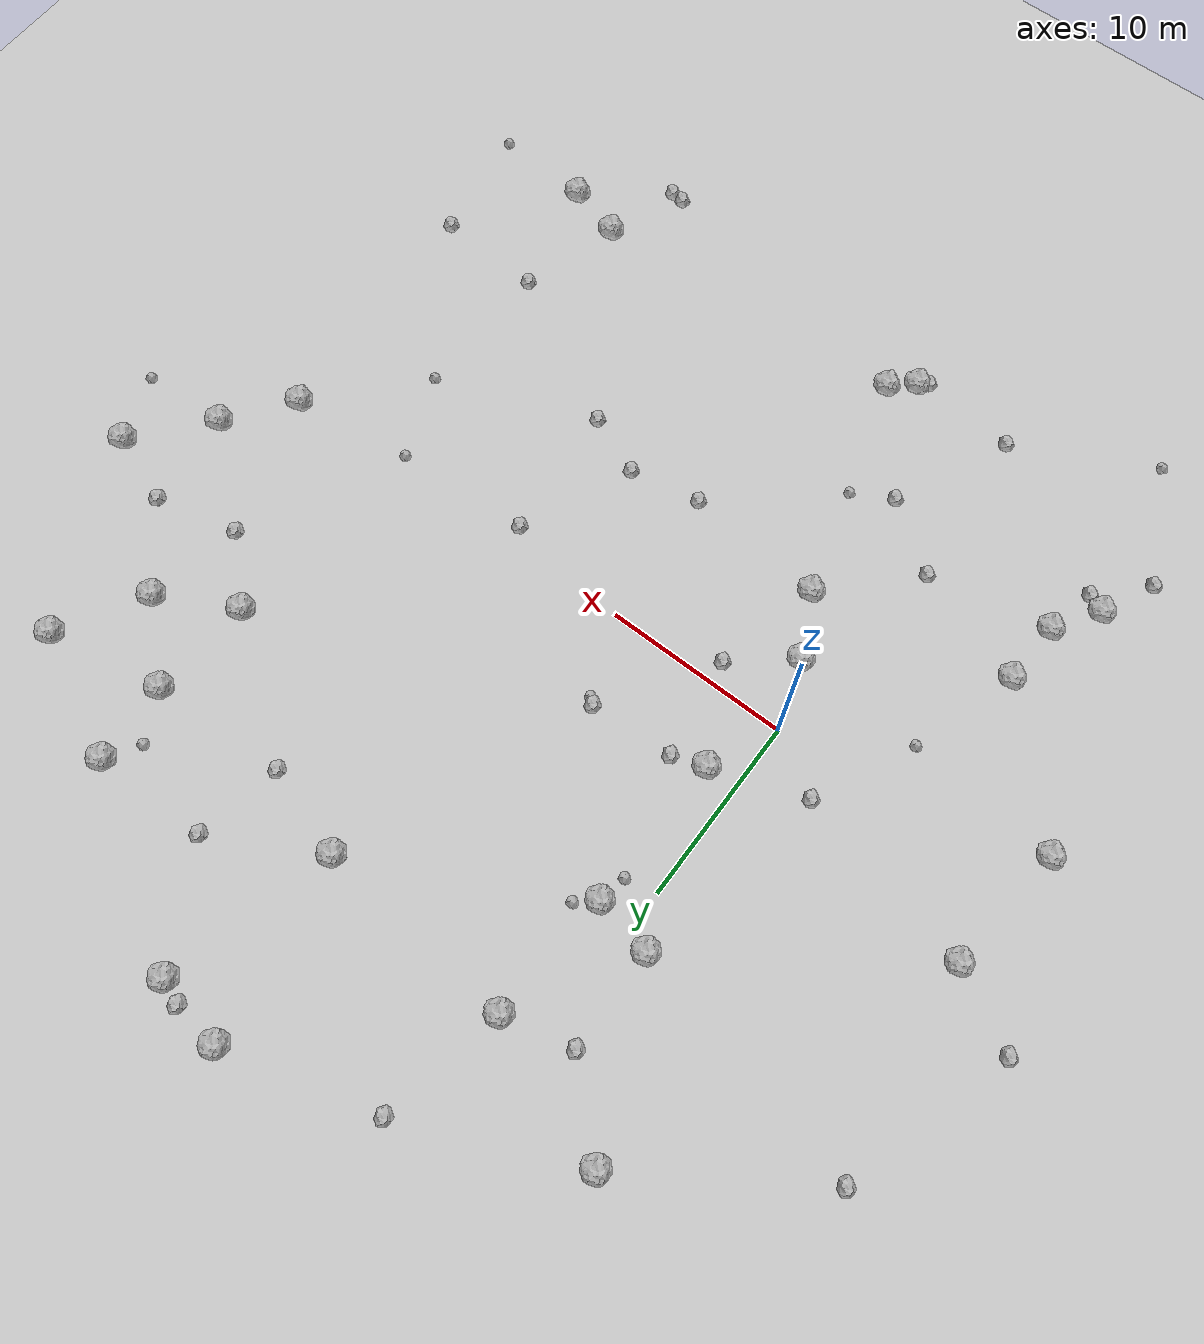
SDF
<sdf version="1.6">
 <world name="default">
  <include><uri>model://custom_ground</uri></include>
  <include><uri>model://sun</uri></include>
  <model name="rock1_0_0">
   <include><uri>model://rock1</uri><pose>-7.665097788831506 -9.14031644332022 0.5 0 0 0</pose></include>
  </model>
  <model name="rock1_0_1">
   <include><uri>model://rock1</uri><pose>1.749082950583304 3.670253869079552 0.5 0 0 0</pose></include>
  </model>
  <model name="rock1_0_2">
   <include><uri>model://rock1</uri><pose>27.285335235242513 -19.18047251315876 0.5 0 0 0</pose></include>
  </model>
  <model name="rock1_0_3">
   <include><uri>model://rock1</uri><pose>15.75125062573997 26.80326223767741 0.5 0 0 0</pose></include>
  </model>
  <model name="rock1_0_4">
   <include><uri>model://rock1</uri><pose>32.07330132265277 17.930565343451136 0.5 0 0 0</pose></include>
  </model>
  <model name="rock1_0_5">
   <include><uri>model://rock1</uri><pose>33.524904742795435 3.9685626496330997 0.5 0 0 0</pose></include>
  </model>
  <model name="rock1_0_6">
   <include><uri>model://rock1</uri><pose>29.413794461519743 13.387691711273924 0.5 0 0 0</pose></include>
  </model>
  <model name="rock1_0_7">
   <include><uri>model://rock1</uri><pose>11.885067412005938 27.55520479216201 0.5 0 0 0</pose></include>
  </model>
  <model name="rock1_0_8">
   <include><uri>model://rock1</uri><pose>-13.78052722447391 -2.6110933847036506 0.5 0 0 0</pose></include>
  </model>
  <model name="rock1_0_9">
   <include><uri>model://rock1</uri><pose>2.493760067396188 18.73852418809131 0.5 0 0 0</pose></include>
  </model>
  <model name="rock1_0_10">
   <include><uri>model://rock1</uri><pose>25.666368532358263 16.73550872525572 0.5 0 0 0</pose></include>
  </model>
  <model name="rock1_0_11">
   <include><uri>model://rock1</uri><pose>24.224269662808716 -18.302510047962393 0.5 0 0 0</pose></include>
  </model>
  <model name="rock1_0_12">
   <include><uri>model://rock1</uri><pose>-5.019593318715749 21.329093604675172 0.5 0 0 0</pose></include>
  </model>
  <model name="rock1_0_13">
   <include><uri>model://rock1</uri><pose>5.085116447933309 -20.34654263689962 0.5 0 0 0</pose></include>
  </model>
  <model name="rock1_0_14">
   <include><uri>model://rock1</uri><pose>1.9471901750164342 11.91224014068031 0.5 0 0 0</pose></include>
  </model>
  <model name="rock1_0_15">
   <include><uri>model://rock1</uri><pose>30.919128769261434 0.49162523178139494 0.5 0 0 0</pose></include>
  </model>
  <model name="rock1_0_16">
   <include><uri>model://rock1</uri><pose>25.385912588542872 21.061261592377242 0.5 0 0 0</pose></include>
  </model>
  <model name="rock1_0_17">
   <include><uri>model://rock1</uri><pose>-9.442079987540762 -14.880738652382053 0.5 0 0 0</pose></include>
  </model>
  <model name="rock1_0_18">
   <include><uri>model://rock1</uri><pose>36.85533938851372 7.8275449660594205 0.5 0 0 0</pose></include>
  </model>
  <model name="rock1_0_19">
   <include><uri>model://rock1</uri><pose>6.348032613185829 -19.26625221608378 0.5 0 0 0</pose></include>
  </model>
  <model name="rock1_0_20">
   <include><uri>model://rock1</uri><pose>-7.864524463861498 -12.53873812769357 0.5 0 0 0</pose></include>
  </model>
  <model name="rock1_0_21">
   <include><uri>model://rock1</uri><pose>25.27933930589922 11.224622398152306 0.5 0 0 0</pose></include>
  </model>
  <model name="rock1_0_22">
   <include><uri>model://rock1</uri><pose>13.387478105056204 17.848089938084414 0.5 0 0 0</pose></include>
  </model>
  <model name="rock1_0_23">
   <include><uri>model://rock1</uri><pose>1.2205791135359405 -3.6570912618335996 0.5 0 0 0</pose></include>
  </model>
  <model name="rock1_0_24">
   <include><uri>model://rock1</uri><pose>-1.179028126333911 12.505851895990396 0.5 0 0 0</pose></include>
  </model>
  <model name="rock1_0_25">
   <include><uri>model://rock1</uri><pose>-12.958369268569465 4.176922521098547 0.5 0 0 0</pose></include>
  </model>
  <model name="rock1_0_26">
   <include><uri>model://rock1</uri><pose>2.869627095277778 -6.978271631738778 0.5 0 0 0</pose></include>
  </model>
  <model name="rock2_0_0">
   <include><uri>model://rock2</uri><pose>3.4596056904368737 4.280809921026105 0.3 0 0 0</pose></include>
  </model>
  <model name="rock2_0_1">
   <include><uri>model://rock2</uri><pose>-0.6517869298892691 -20.13078063236705 0.3 0 0 0</pose></include>
  </model>
  <model name="rock2_0_2">
   <include><uri>model://rock2</uri><pose>4.229515482831843 -1.172539416506055 0.3 0 0 0</pose></include>
  </model>
  <model name="rock2_0_3">
   <include><uri>model://rock2</uri><pose>3.794735326104398 25.30416215305455 0.3 0 0 0</pose></include>
  </model>
  <model name="rock2_0_4">
   <include><uri>model://rock2</uri><pose>28.428438567673226 8.233228893540698 0.3 0 0 0</pose></include>
  </model>
  <model name="rock2_0_5">
   <include><uri>model://rock2</uri><pose>10.375432184818777 -7.60723954187355 0.3 0 0 0</pose></include>
  </model>
  <model name="rock2_0_6">
   <include><uri>model://rock2</uri><pose>-17.00614192292381 6.372796739049868 0.3 0 0 0</pose></include>
  </model>
  <model name="rock2_0_7">
   <include><uri>model://rock2</uri><pose>25.768662312333554 -12.79082683371626 0.3 0 0 0</pose></include>
  </model>
  <model name="rock2_0_8">
   <include><uri>model://rock2</uri><pose>32.94953089482068 9.291203279228213 0.3 0 0 0</pose></include>
  </model>
  <model name="rock2_0_9">
   <include><uri>model://rock2</uri><pose>18.211138209968503 16.357638656225944 0.3 0 0 0</pose></include>
  </model>
  <model name="rock2_0_10">
   <include><uri>model://rock2</uri><pose>22.188953299586544 -22.354559475552733 0.3 0 0 0</pose></include>
  </model>
  <model name="rock2_0_11">
   <include><uri>model://rock2</uri><pose>22.91453507927251 -22.44850692792692 0.3 0 0 0</pose></include>
  </model>
  <model name="rock2_0_12">
   <include><uri>model://rock2</uri><pose>4.553988188334941 -20.750430294265865 0.3 0 0 0</pose></include>
  </model>
  <model name="rock2_0_13">
   <include><uri>model://rock2</uri><pose>-8.54578334672624 -15.349663889802734 0.3 0 0 0</pose></include>
  </model>
  <model name="rock2_0_14">
   <include><uri>model://rock2</uri><pose>14.228346526496502 -6.910479446993385 0.3 0 0 0</pose></include>
  </model>
  <model name="rock2_0_15">
   <include><uri>model://rock2</uri><pose>-1.3638564184170718 -11.289715266932625 0.3 0 0 0</pose></include>
  </model>
  <model name="rock2_0_16">
   <include><uri>model://rock2</uri><pose>19.0778589585115 20.963206040833107 0.3 0 0 0</pose></include>
  </model>
  <model name="rock2_0_17">
   <include><uri>model://rock2</uri><pose>-10.87525335391939 -17.738307758585886 0.3 0 0 0</pose></include>
  </model>
  <model name="rock2_0_18">
   <include><uri>model://rock2</uri><pose>16.899232307803317 -0.8641274994150301 0.3 0 0 0</pose></include>
  </model>
  <model name="rock2_0_19">
   <include><uri>model://rock2</uri><pose>-3.22626367654588 1.9544306026330887 0.3 0 0 0</pose></include>
  </model>
  <model name="rock2_0_20">
   <include><uri>model://rock2</uri><pose>31.584381704894483 -13.12686208408423 0.3 0 0 0</pose></include>
  </model>
  <model name="rock2_0_21">
   <include><uri>model://rock2</uri><pose>17.47542201340682 -8.259515073139895 0.3 0 0 0</pose></include>
  </model>
  <model name="rock2_0_22">
   <include><uri>model://rock2</uri><pose>14.451529825865734 27.323723913471575 0.3 0 0 0</pose></include>
  </model>
  <model name="rock2_0_23">
   <include><uri>model://rock2</uri><pose>-1.2572025149936152 17.891579246761502 0.3 0 0 0</pose></include>
  </model>
  <model name="rock2_0_24">
   <include><uri>model://rock2</uri><pose>8.025530159806266 4.530840943088968 0.3 0 0 0</pose></include>
  </model>
  <model name="rock2_0_25">
   <include><uri>model://rock2</uri><pose>2.2678380931299067 -13.911462652463126 0.3 0 0 0</pose></include>
  </model>
  <model name="rock2_0_26">
   <include><uri>model://rock2</uri><pose>-14.184507099445543 15.313589074548716 0.3 0 0 0</pose></include>
  </model>
  <model name="rock3_0_0">
   <include><uri>model://rock3</uri><pose>1.6085188890901136 10.355240943191362 0.2 0 0 0</pose></include>
  </model>
  <model name="rock3_0_1">
   <include><uri>model://rock3</uri><pose>32.52540843352298 -19.58435299580917 0.2 0 0 0</pose></include>
  </model>
  <model name="rock3_0_2">
   <include><uri>model://rock3</uri><pose>-5.842579602990924 -3.3816566514724506 0.2 0 0 0</pose></include>
  </model>
  <model name="rock3_0_3">
   <include><uri>model://rock3</uri><pose>38.19494450055906 4.22639134650354 0.2 0 0 0</pose></include>
  </model>
  <model name="rock3_0_4">
   <include><uri>model://rock3</uri><pose>2.8876386019431166 12.730959746259785 0.2 0 0 0</pose></include>
  </model>
  <model name="rock3_0_5">
   <include><uri>model://rock3</uri><pose>25.99650609674932 -5.010849022658739 0.2 0 0 0</pose></include>
  </model>
  <model name="rock3_0_6">
   <include><uri>model://rock3</uri><pose>8.3502838424733 4.213658412782742 0.2 0 0 0</pose></include>
  </model>
  <model name="rock3_0_7">
   <include><uri>model://rock3</uri><pose>-7.962601792055954 -23.920803267538304 0.2 0 0 0</pose></include>
  </model>
  <model name="rock3_0_8">
   <include><uri>model://rock3</uri><pose>4.352075963170709 -12.827875309682241 0.2 0 0 0</pose></include>
  </model>
  <model name="rock3_0_9">
   <include><uri>model://rock3</uri><pose>24.239352585488795 -0.45258105459970466 0.2 0 0 0</pose></include>
  </model>
  <model name="rock3_0_10">
   <include><uri>model://rock3</uri><pose>24.254748681737226 19.344718655461634 0.2 0 0 0</pose></include>
  </model>
 </world>
</sdf>
